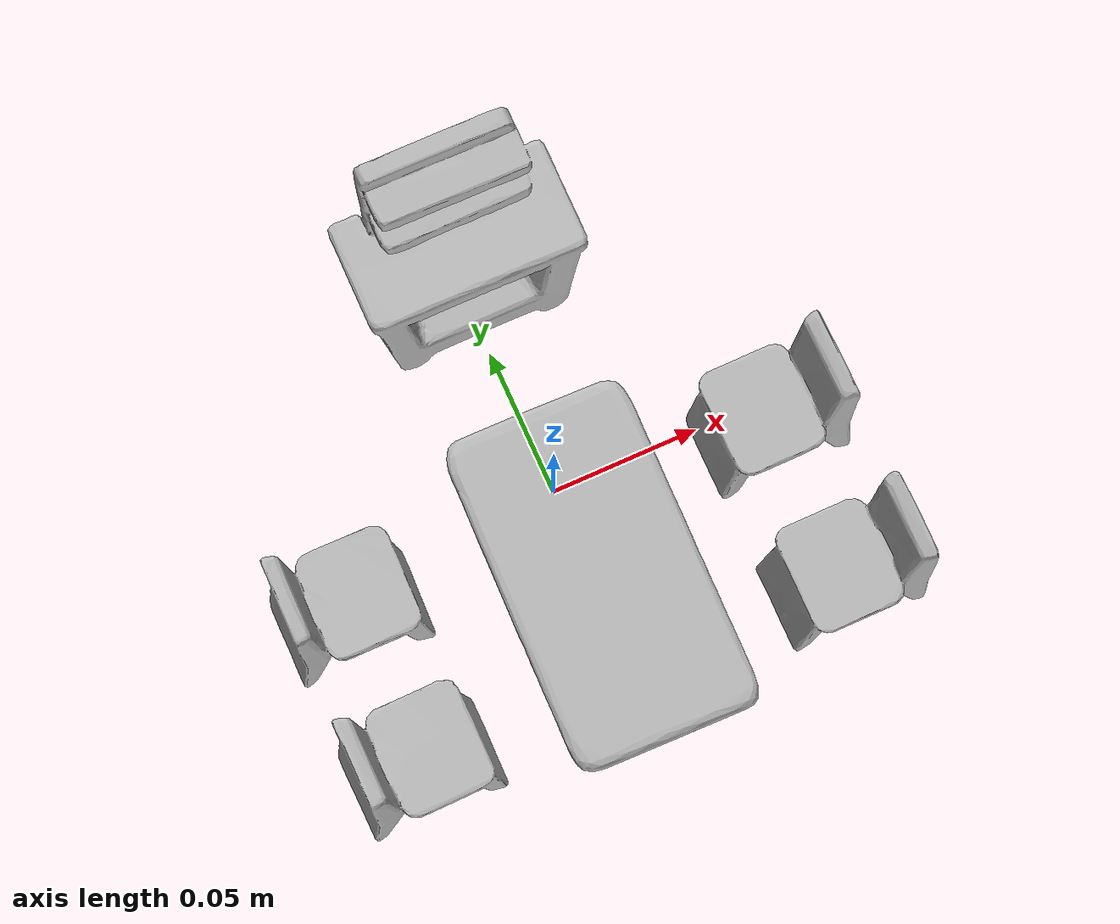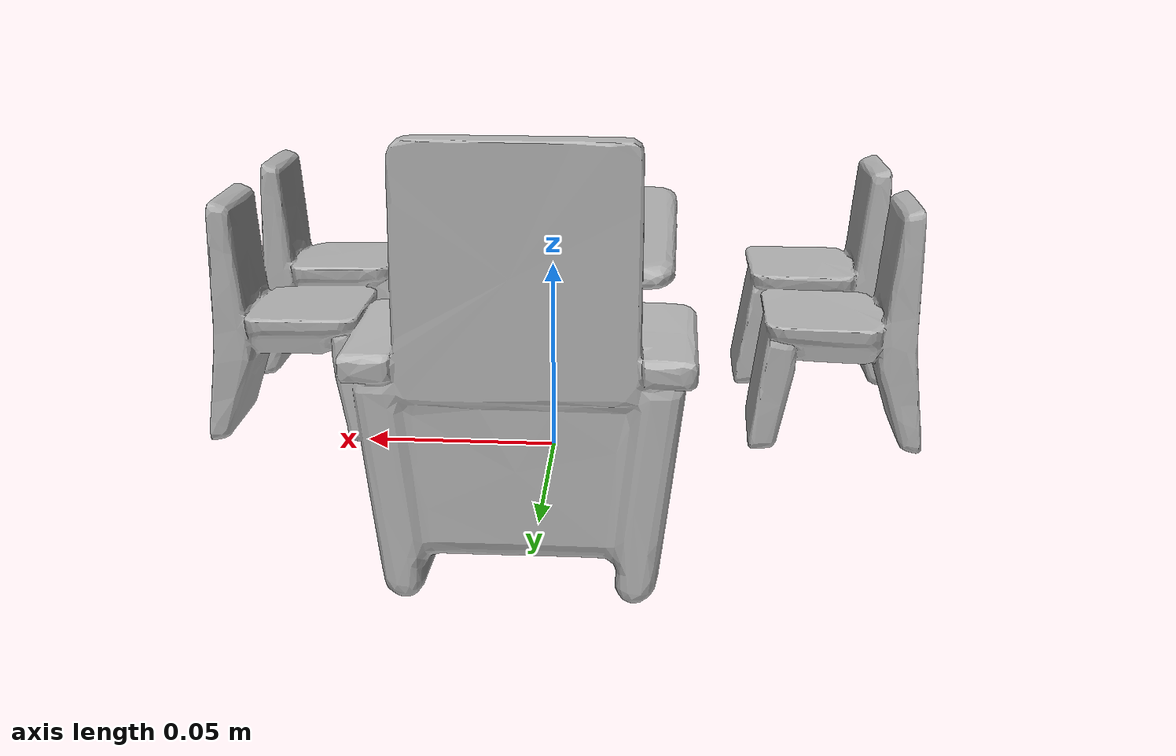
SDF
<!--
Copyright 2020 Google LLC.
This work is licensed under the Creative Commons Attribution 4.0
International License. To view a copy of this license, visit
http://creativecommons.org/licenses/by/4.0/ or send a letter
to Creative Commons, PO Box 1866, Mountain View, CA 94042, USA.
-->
<?xml version="1.0" ?>
<sdf version="1.6">
    <model name="KITCHEN_SET_CLASSIC_40HwCHfeG0H">
        <static>1</static>
        <link name="link_0">
            <visual name="visual">
                <geometry>
                    <mesh>
                        <uri>meshes/model.obj</uri>
                    </mesh>
                </geometry>
            </visual>
            <collision name="collision_0">
                <geometry>
                    <mesh>
                        <uri>meshes/model.obj</uri>
                    </mesh>
                </geometry>
            </collision>
        </link>
    </model>
</sdf>
